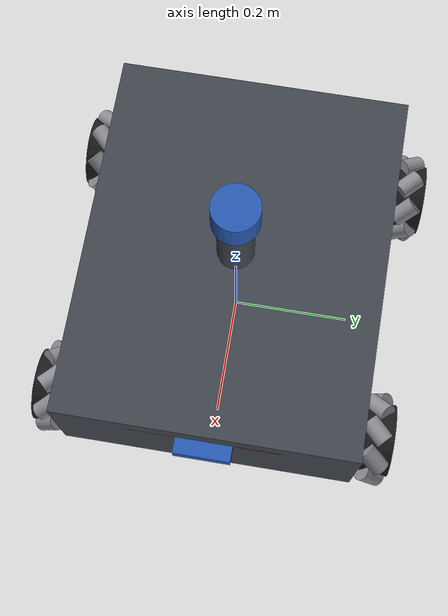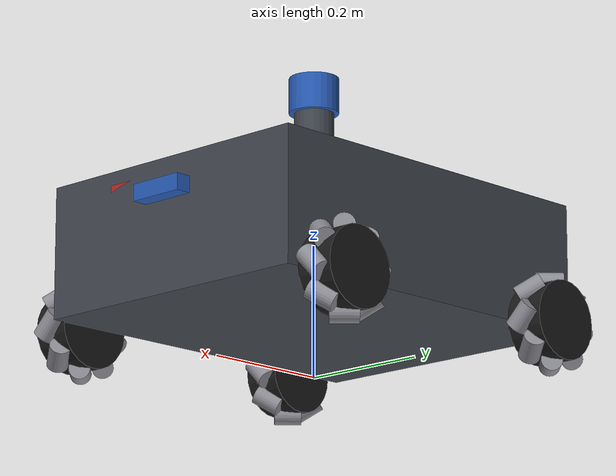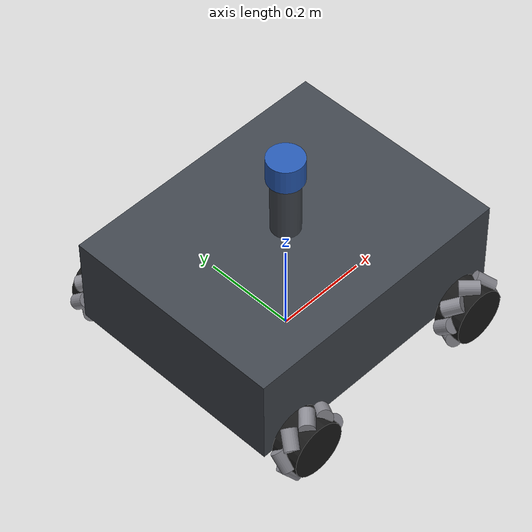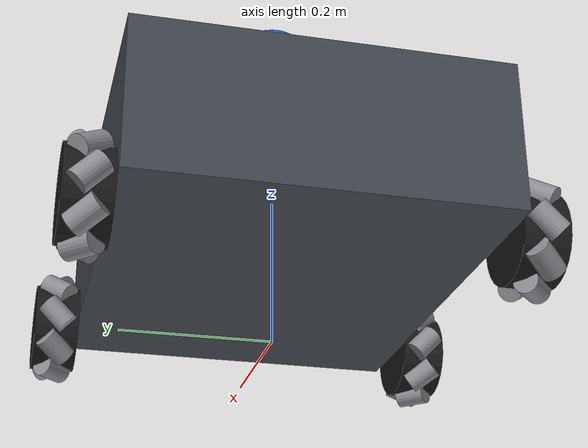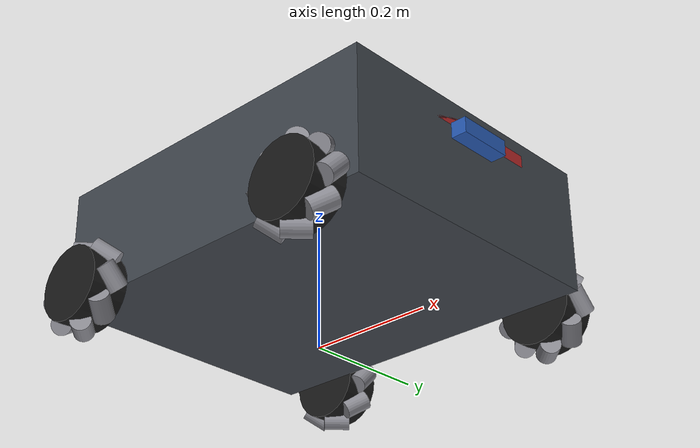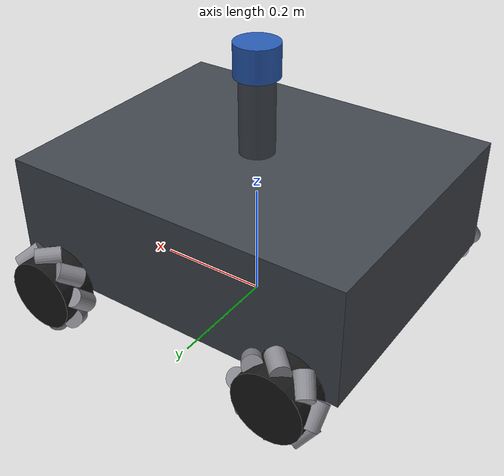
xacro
<?xml version="1.0"?>
<robot xmlns:xacro="http://www.ros.org/wiki/xacro"
       xmlns:gz="http://gazebosim.org/schema"
       name="r2">

  <xacro:arg name="use_sim"          default="true"/>
  <xacro:arg name="use_ros2_control" default="true"/>
  <xacro:arg name="controllers_file" default=""/>
  <xacro:arg name="contact_model"    default="friction"/>
  <xacro:arg name="use_ground_truth" default="true"/>

  <xacro:arg name="publish_roller_states" default="false"/>

  <!-- Roller geometry and bearing losses, see common_properties.xacro. -->
  <xacro:arg name="mecanum_roller_count"    default="8"/>
  <xacro:arg name="mecanum_roller_damping"  default="0.0"/>
  <xacro:arg name="mecanum_roller_friction" default="0.0"/>

  <!-- Mecanum contact friction, see common_properties.xacro. -->
  <xacro:arg name="mecanum_mu_slip" default="0.05"/>
  <xacro:arg name="mecanum_mu_grip" default="1.0"/>

  <!-- Includes. Order matters: properties and macros before their users.    -->
  <xacro:include filename="$(find r2_description)/urdf/common_properties.xacro"/>
  <xacro:include filename="$(find r2_description)/urdf/inertial_macros.xacro"/>
  <xacro:include filename="$(find r2_description)/urdf/base.xacro"/>
  <xacro:include filename="$(find r2_description)/urdf/mecanum_wheel.xacro"/>
  <xacro:include filename="$(find r2_description)/urdf/sensors.xacro"/>
  <xacro:include filename="$(find r2_description)/urdf/r2.ros2_control.xacro"/>
  <xacro:include filename="$(find r2_description)/urdf/r2.gazebo.xacro"/>

  <!-- Wheels                                                               -->
  <xacro:mecanum_wheel prefix="front_left"
                       x_off="${wheel_x_off}"  y_off="${wheel_y_off}"
                       roller_dir="-1" contact_model="$(arg contact_model)"/>

  <xacro:mecanum_wheel prefix="front_right"
                       x_off="${wheel_x_off}"  y_off="${-wheel_y_off}"
                       roller_dir="1"  contact_model="$(arg contact_model)"/>

  <xacro:mecanum_wheel prefix="rear_left"
                       x_off="${-wheel_x_off}" y_off="${wheel_y_off}"
                       roller_dir="1"  contact_model="$(arg contact_model)"/>

  <xacro:mecanum_wheel prefix="rear_right"
                       x_off="${-wheel_x_off}" y_off="${-wheel_y_off}"
                       roller_dir="-1" contact_model="$(arg contact_model)"/>

  <!-- Control and simulation                                               -->
  <xacro:if value="$(arg use_ros2_control)">
    <xacro:r2_ros2_control use_sim="$(arg use_sim)"
                           controllers_file="$(arg controllers_file)"
                           contact_model="$(arg contact_model)"
                           publish_roller_states="$(arg publish_roller_states)"/>
  </xacro:if>

  <xacro:if value="$(arg use_sim)">
    <xacro:r2_gazebo_sensors use_ground_truth="$(arg use_ground_truth)"/>
  </xacro:if>

</robot>

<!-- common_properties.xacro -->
<robot xmlns:xacro="http://www.ros.org/wiki/xacro">

  <!-- Overall envelope (competition constraint)                            -->
  <xacro:property name="footprint_x" value="0.600"/>
  <xacro:property name="footprint_y" value="0.600"/>
  <xacro:property name="height_max"  value="0.500"/>

  <!-- Wheels (152 mm diameter mecanum)                                     -->
  <xacro:property name="wheel_radius" value="0.076"/>
  <xacro:property name="wheel_width"  value="0.060"/>
  <xacro:property name="wheel_mass"   value="1.20"/>

  <!-- Roller rake angle. Real mecanum rollers sit at 45 deg to the wheel axis. -->
  <xacro:property name="roller_angle" value="${radians(45)}"/>

  <!-- Chassis                                                              -->
  <!-- Width is derived so that chassis + both wheels == footprint_y exactly. -->
  <xacro:property name="chassis_x"    value="${footprint_x}"/>
  <xacro:property name="chassis_y"    value="${footprint_y - 2 * wheel_width}"/>
  <xacro:property name="chassis_z"    value="0.200"/>
  <xacro:property name="chassis_mass" value="20.0"/>

  <!-- Mecanum kinematics                                                   -->
  <!-- lx: half the wheelbase (base_link X to wheel centre).                 -->
  <xacro:property name="wheel_x_off" value="0.220"/>
  <!-- ly: half the track. Derived so the wheels sit flush with the envelope. -->
  <xacro:property name="wheel_y_off" value="${(chassis_y + wheel_width) / 2}"/>

  <xacro:property name="lx_plus_ly" value="${wheel_x_off + wheel_y_off}"/>

  <!-- Wheel velocity limit [rad/s]. 30 rad/s * 0.076 m ~= 2.3 m/s at the rim. -->
  <xacro:property name="max_wheel_vel" value="30.0"/>

  <!-- Mecanum contact model                                                -->
  <xacro:property name="mecanum_mu_slip" value="$(arg mecanum_mu_slip)"/>  <!-- across fdir1 -> SDF mu2: rollers free-run -->
  <xacro:property name="mecanum_mu_grip" value="$(arg mecanum_mu_grip)"/>  <!-- along  fdir1 -> SDF mu : rollers grip -->

  <xacro:property name="mecanum_roller_count"  value="$(arg mecanum_roller_count)"/>
  <xacro:property name="mecanum_roller_mass"   value="0.05"/>
  <xacro:property name="mecanum_roller_mu"     value="1.0"/>
  <!-- Roller barrel radius; the hub is inset by this much so the rollers carry the load. -->
  <xacro:property name="mecanum_roller_radius" value="0.016"/>

  <xacro:property name="mecanum_roller_damping"  value="$(arg mecanum_roller_damping)"/>
  <xacro:property name="mecanum_roller_friction" value="$(arg mecanum_roller_friction)"/>

  <!-- Sensor mast (raises the LIDAR clear of the chassis)                  -->
  <xacro:property name="mast_radius" value="0.030"/>
  <xacro:property name="mast_height" value="0.130"/>
  <xacro:property name="mast_mass"   value="0.50"/>

  <!-- Sensors                                                              -->
  <!-- 2D LIDAR, LD19 / RPLIDAR-S2 class -->
  <xacro:property name="lidar_radius"  value="0.038"/>
  <xacro:property name="lidar_height"  value="0.055"/>
  <xacro:property name="lidar_mass"    value="0.19"/>
  <xacro:property name="lidar_samples" value="640"/>
  <xacro:property name="lidar_rate"    value="10.0"/>
  <xacro:property name="lidar_min"     value="0.15"/>
  <xacro:property name="lidar_max"     value="12.0"/>
  <xacro:property name="lidar_noise"   value="0.01"/>

  <!-- RGB-D camera, RealSense D435 class -->
  <xacro:property name="camera_x"      value="0.025"/>
  <xacro:property name="camera_y"      value="0.090"/>
  <xacro:property name="camera_z"      value="0.025"/>
  <xacro:property name="camera_mass"   value="0.072"/>
  <xacro:property name="camera_width"  value="640"/>
  <xacro:property name="camera_height" value="480"/>
  <xacro:property name="camera_hfov"   value="1.274"/>   <!-- ~73 deg -->
  <xacro:property name="camera_rate"   value="15.0"/>
  <xacro:property name="camera_near"   value="0.30"/>
  <xacro:property name="camera_far"    value="8.00"/>
  <!-- Mounted on the front face, at roughly half chassis height. -->
  <xacro:property name="camera_mount_z" value="0.150"/>

  <!-- IMU -->
  <xacro:property name="imu_size"   value="0.020"/>
  <xacro:property name="imu_mass"   value="0.020"/>
  <xacro:property name="imu_rate"   value="100.0"/>
  <xacro:property name="imu_mount_z" value="0.050"/>

  <!-- Derived heights (for sanity checks and sensor placement)             -->
  <xacro:property name="chassis_top_z" value="${chassis_z}"/>
  <xacro:property name="mast_top_z"    value="${chassis_top_z + mast_height}"/>
  <xacro:property name="lidar_mount_z" value="${mast_top_z + lidar_height / 2}"/>

  <!-- Materials (RViz only; Gazebo colours live in r2.gazebo.xacro)        -->
  <material name="r2_chassis_grey"><color rgba="0.25 0.27 0.30 1.0"/></material>
  <material name="r2_wheel_black"> <color rgba="0.10 0.10 0.10 1.0"/></material>
  <material name="r2_roller_grey"> <color rgba="0.55 0.55 0.58 1.0"/></material>
  <material name="r2_sensor_blue"> <color rgba="0.15 0.35 0.70 1.0"/></material>
  <material name="r2_accent_red">  <color rgba="0.70 0.15 0.15 1.0"/></material>

</robot>

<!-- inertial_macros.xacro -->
<robot xmlns:xacro="http://www.ros.org/wiki/xacro">

  <!--
    Solid cuboid of mass m with full side lengths x, y, z, about its centroid.
      Ixx = m(y^2 + z^2)/12, etc.
  -->
  <xacro:macro name="box_inertial" params="mass x y z *origin">
    <inertial>
      <xacro:insert_block name="origin"/>
      <mass value="${mass}"/>
      <inertia
        ixx="${mass * (y*y + z*z) / 12.0}" ixy="0.0" ixz="0.0"
        iyy="${mass * (x*x + z*z) / 12.0}" iyz="0.0"
        izz="${mass * (x*x + y*y) / 12.0}"/>
    </inertial>
  </xacro:macro>

  <!--
    Solid cylinder of mass m, radius r, length h, symmetry axis along LOCAL Z.
      Ixx = Iyy = m(3r^2 + h^2)/12,  Izz = m r^2 / 2
  -->
  <xacro:macro name="cylinder_inertial_z" params="mass radius length *origin">
    <inertial>
      <xacro:insert_block name="origin"/>
      <mass value="${mass}"/>
      <inertia
        ixx="${mass * (3.0*radius*radius + length*length) / 12.0}" ixy="0.0" ixz="0.0"
        iyy="${mass * (3.0*radius*radius + length*length) / 12.0}" iyz="0.0"
        izz="${mass * radius * radius / 2.0}"/>
    </inertial>
  </xacro:macro>

  <xacro:macro name="cylinder_inertial_y" params="mass radius length *origin">
    <inertial>
      <xacro:insert_block name="origin"/>
      <mass value="${mass}"/>
      <inertia
        ixx="${mass * (3.0*radius*radius + length*length) / 12.0}" ixy="0.0" ixz="0.0"
        iyy="${mass * radius * radius / 2.0}"                      iyz="0.0"
        izz="${mass * (3.0*radius*radius + length*length) / 12.0}"/>
    </inertial>
  </xacro:macro>

  <!--
    Solid sphere of mass m, radius r.  I = 2/5 m r^2 on every axis.
  -->
  <xacro:macro name="sphere_inertial" params="mass radius *origin">
    <inertial>
      <xacro:insert_block name="origin"/>
      <mass value="${mass}"/>
      <inertia
        ixx="${2.0 * mass * radius * radius / 5.0}" ixy="0.0" ixz="0.0"
        iyy="${2.0 * mass * radius * radius / 5.0}" iyz="0.0"
        izz="${2.0 * mass * radius * radius / 5.0}"/>
    </inertial>
  </xacro:macro>

</robot>

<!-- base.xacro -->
<robot xmlns:xacro="http://www.ros.org/wiki/xacro">

  <link name="base_footprint"/>

  <joint name="base_footprint_joint" type="fixed">
    <parent link="base_footprint"/>
    <child  link="base_link"/>
    <!-- base_link sits at the wheel axle, i.e. one wheel radius off the floor. -->
    <origin xyz="0 0 ${wheel_radius}" rpy="0 0 0"/>
  </joint>

  <!--
    base_link is the kinematic root of the rigid body. It holds no geometry so
    that the chassis can be repositioned without moving the frame every sensor
    and wheel is measured against.
  -->
  <link name="base_link"/>

  <joint name="chassis_joint" type="fixed">
    <parent link="base_link"/>
    <child  link="chassis_link"/>
    <!-- Chassis sits on top of base_link, so its centroid is half its height up. -->
    <origin xyz="0 0 ${chassis_z / 2}" rpy="0 0 0"/>
  </joint>

  <link name="chassis_link">
    <visual>
      <origin xyz="0 0 0" rpy="0 0 0"/>
      <geometry>
        <box size="${chassis_x} ${chassis_y} ${chassis_z}"/>
      </geometry>
      <material name="r2_chassis_grey"/>
    </visual>

    <collision>
      <origin xyz="0 0 0" rpy="0 0 0"/>
      <geometry>
        <box size="${chassis_x} ${chassis_y} ${chassis_z}"/>
      </geometry>
    </collision>

    <xacro:box_inertial mass="${chassis_mass}"
                        x="${chassis_x}" y="${chassis_y}" z="${chassis_z}">
      <origin xyz="0 0 0" rpy="0 0 0"/>
    </xacro:box_inertial>
  </link>

  <!-- Front marker, so "forward" is unambiguous in RViz and the Gazebo GUI. -->
  <joint name="front_marker_joint" type="fixed">
    <parent link="chassis_link"/>
    <child  link="front_marker_link"/>
    <origin xyz="${chassis_x / 2 - 0.005} 0 ${chassis_z / 2 - 0.030}" rpy="0 0 0"/>
  </joint>

  <link name="front_marker_link">
    <visual>
      <origin xyz="0 0 0" rpy="0 0 0"/>
      <geometry>
        <box size="0.010 ${chassis_y * 0.5} 0.020"/>
      </geometry>
      <material name="r2_accent_red"/>
    </visual>
  </link>

  <joint name="mast_joint" type="fixed">
    <parent link="base_link"/>
    <child  link="mast_link"/>
    <origin xyz="0 0 ${chassis_top_z + mast_height / 2}" rpy="0 0 0"/>
  </joint>

  <link name="mast_link">
    <visual>
      <origin xyz="0 0 0" rpy="0 0 0"/>
      <geometry>
        <cylinder radius="${mast_radius}" length="${mast_height}"/>
      </geometry>
      <material name="r2_chassis_grey"/>
    </visual>

    <collision>
      <origin xyz="0 0 0" rpy="0 0 0"/>
      <geometry>
        <cylinder radius="${mast_radius}" length="${mast_height}"/>
      </geometry>
    </collision>

    <xacro:cylinder_inertial_z mass="${mast_mass}"
                               radius="${mast_radius}" length="${mast_height}">
      <origin xyz="0 0 0" rpy="0 0 0"/>
    </xacro:cylinder_inertial_z>
  </link>

</robot>

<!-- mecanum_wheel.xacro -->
<robot xmlns:xacro="http://www.ros.org/wiki/xacro"
       xmlns:gz="http://gazebosim.org/schema">

  <!-- A single free-spinning roller (used only by contact_model="rollers")  -->
  <xacro:macro name="mecanum_roller" params="prefix index roller_dir">

    <!-- Angular position of this roller around the wheel axle. -->
    <xacro:property name="phi"
                    value="${2.0 * pi * index / mecanum_roller_count}"/>
    <!-- Radius at which the roller centres sit, so the barrels reach wheel_radius. -->
    <xacro:property name="r_hub" value="${wheel_radius - mecanum_roller_radius}"/>
    <!-- Roller barrel length: spans most of the wheel width at its rake angle. -->
    <xacro:property name="r_len" value="${wheel_width * 0.7}"/>

    <xacro:property name="r_axis_y" value="${cos(roller_angle)}"/>
    <xacro:property name="r_axis_z" value="${roller_dir * sin(roller_angle)}"/>
    <!-- Roll that carries the cylinder's default +Z onto that spin axis. -->
    <xacro:property name="r_roll" value="${atan2(-r_axis_y, r_axis_z)}"/>

    <joint name="${prefix}_roller_${index}_joint" type="continuous">
      <parent link="${prefix}_wheel_link"/>
      <child  link="${prefix}_roller_${index}_link"/>
      <origin xyz="${r_hub * cos(phi)} 0 ${-r_hub * sin(phi)}"
              rpy="0 ${phi} 0"/>
      <axis xyz="0 ${r_axis_y} ${r_axis_z}"/>
      <dynamics damping="${mecanum_roller_damping}"
                friction="${mecanum_roller_friction}"/>
    </joint>

    <link name="${prefix}_roller_${index}_link">
      <visual>
        <origin xyz="0 0 0" rpy="${r_roll} 0 0"/>
        <geometry>
          <cylinder radius="${mecanum_roller_radius}" length="${r_len}"/>
        </geometry>
        <material name="r2_roller_grey"/>
      </visual>

      <collision>
        <origin xyz="0 0 0" rpy="${r_roll} 0 0"/>
        <geometry>
          <cylinder radius="${mecanum_roller_radius}" length="${r_len}"/>
        </geometry>
      </collision>

      <!-- Spin axis is local Z before the r_roll rotation is applied. -->
      <xacro:cylinder_inertial_z mass="${mecanum_roller_mass}"
                                 radius="${mecanum_roller_radius}" length="${r_len}">
        <origin xyz="0 0 0" rpy="${r_roll} 0 0"/>
      </xacro:cylinder_inertial_z>
    </link>

    <gazebo reference="${prefix}_roller_${index}_link">
      <mu1>${mecanum_roller_mu}</mu1>
      <mu2>${mecanum_roller_mu}</mu2>
      <kp>1e6</kp>
      <kd>100.0</kd>
    </gazebo>

  </xacro:macro>

  <!-- Decorative roller, no joint. Used by contact_model="friction" so the  -->
  <!-- wheel still reads as a mecanum wheel visually.                        -->
  <xacro:macro name="mecanum_roller_visual" params="index roller_dir">
    <xacro:property name="phi"
                    value="${2.0 * pi * index / mecanum_roller_count}"/>
    <xacro:property name="r_hub" value="${wheel_radius - mecanum_roller_radius}"/>
    <xacro:property name="r_len" value="${wheel_width * 0.7}"/>
    <xacro:property name="r_axis_y" value="${cos(roller_angle)}"/>
    <xacro:property name="r_axis_z" value="${roller_dir * sin(roller_angle)}"/>
    <xacro:property name="r_roll" value="${atan2(-r_axis_y, r_axis_z)}"/>

    <visual>
      <!--
        Compose the phi rotation about Y with the roller's own roll. Expressed
        directly here because a visual has no frame of its own to hang it on.
      -->
      <origin xyz="${r_hub * cos(phi)} 0 ${-r_hub * sin(phi)}"
              rpy="${r_roll} ${phi} 0"/>
      <geometry>
        <cylinder radius="${mecanum_roller_radius}" length="${r_len}"/>
      </geometry>
      <material name="r2_roller_grey"/>
    </visual>
  </xacro:macro>

  <!-- The wheel                                                            -->
  <!--
    prefix      : front_left | front_right | rear_left | rear_right
    x_off/y_off : wheel centre relative to base_link
    roller_dir  : +1 or -1, the rake direction (see diagram above)
  -->
  <xacro:macro name="mecanum_wheel" params="prefix x_off y_off roller_dir contact_model">

    <joint name="${prefix}_wheel_joint" type="continuous">
      <parent link="base_link"/>
      <child  link="${prefix}_wheel_link"/>
      <origin xyz="${x_off} ${y_off} 0" rpy="0 0 0"/>
      <!-- All four wheels spin about base_link Y. REP-103: +Y is left. -->
      <axis xyz="0 1 0"/>
      <limit effort="40.0" velocity="${max_wheel_vel}"/>
      <dynamics damping="0.01" friction="0.0"/>
    </joint>

    <link name="${prefix}_wheel_link">

      <xacro:if value="${contact_model == 'rollers'}">
        <!--
          Hub is inset by one roller diameter so it never reaches the ground:
          the rollers must carry the load, or the wheel behaves like a caster.
        -->
        <visual>
          <origin xyz="0 0 0" rpy="${pi/2} 0 0"/>
          <geometry>
            <cylinder radius="${wheel_radius - 2*mecanum_roller_radius}"
                      length="${wheel_width}"/>
          </geometry>
          <material name="r2_wheel_black"/>
        </visual>
        <collision>
          <origin xyz="0 0 0" rpy="${pi/2} 0 0"/>
          <geometry>
            <cylinder radius="${wheel_radius - 2*mecanum_roller_radius}"
                      length="${wheel_width}"/>
          </geometry>
        </collision>
      </xacro:if>

      <xacro:if value="${contact_model == 'friction'}">
        <!-- Full-radius cylinder: this is the surface that touches the ground. -->
        <visual>
          <origin xyz="0 0 0" rpy="${pi/2} 0 0"/>
          <geometry>
            <cylinder radius="${wheel_radius - mecanum_roller_radius}"
                      length="${wheel_width}"/>
          </geometry>
          <material name="r2_wheel_black"/>
        </visual>
        <!-- Visual-only rollers, so the wheel still reads as mecanum. -->
        <xacro:loop_rollers_visual index="0" roller_dir="${roller_dir}"/>
        <collision>
          <origin xyz="0 0 0" rpy="0 0 0"/>
          <geometry>
            <sphere radius="${wheel_radius}"/>
          </geometry>
        </collision>
      </xacro:if>

      <!-- Spins about Y, so the polar moment must land on Iyy. -->
      <xacro:cylinder_inertial_y mass="${wheel_mass}"
                                 radius="${wheel_radius}" length="${wheel_width}">
        <origin xyz="0 0 0" rpy="0 0 0"/>
      </xacro:cylinder_inertial_y>
    </link>

    <xacro:if value="${contact_model == 'rollers'}">
      <!-- Hub must not grip: all traction comes from the rollers. -->
      <gazebo reference="${prefix}_wheel_link">
        <mu1>0.0</mu1>
        <mu2>0.0</mu2>
      </gazebo>
      <xacro:loop_rollers index="0" prefix="${prefix}" roller_dir="${roller_dir}"/>
    </xacro:if>

    <xacro:if value="${contact_model == 'friction'}">
      <gazebo reference="${prefix}_wheel_link">
        <collision>
          <surface>
            <friction>
              <ode>
                <mu>${mecanum_mu_grip}</mu>
                <mu2>${mecanum_mu_slip}</mu2>
                <xacro:unless value="${mecanum_mu_slip == mecanum_mu_grip}">
                  <fdir1 gz:expressed_in="base_footprint">${cos(roller_angle)} ${roller_dir * sin(roller_angle)} 0</fdir1>
                </xacro:unless>
              </ode>
            </friction>
          </surface>
        </collision>
      </gazebo>
    </xacro:if>

  </xacro:macro>

  <!-- Recursive loops (xacro has no for-loop)                              -->
  <xacro:macro name="loop_rollers" params="index prefix roller_dir">
    <xacro:if value="${index &lt; mecanum_roller_count}">
      <xacro:mecanum_roller prefix="${prefix}" index="${index}" roller_dir="${roller_dir}"/>
      <xacro:loop_rollers index="${index + 1}" prefix="${prefix}" roller_dir="${roller_dir}"/>
    </xacro:if>
  </xacro:macro>

  <xacro:macro name="loop_rollers_visual" params="index roller_dir">
    <xacro:if value="${index &lt; mecanum_roller_count}">
      <xacro:mecanum_roller_visual index="${index}" roller_dir="${roller_dir}"/>
      <xacro:loop_rollers_visual index="${index + 1}" roller_dir="${roller_dir}"/>
    </xacro:if>
  </xacro:macro>

</robot>

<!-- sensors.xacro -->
<robot xmlns:xacro="http://www.ros.org/wiki/xacro">

  <!-- IMU                                                                  -->
  <joint name="imu_joint" type="fixed">
    <parent link="base_link"/>
    <child  link="imu_link"/>
    <origin xyz="0 0 ${imu_mount_z}" rpy="0 0 0"/>
  </joint>

  <link name="imu_link">
    <visual>
      <origin xyz="0 0 0" rpy="0 0 0"/>
      <geometry>
        <box size="${imu_size} ${imu_size} ${imu_size}"/>
      </geometry>
      <material name="r2_accent_red"/>
    </visual>

    <xacro:box_inertial mass="${imu_mass}"
                        x="${imu_size}" y="${imu_size}" z="${imu_size}">
      <origin xyz="0 0 0" rpy="0 0 0"/>
    </xacro:box_inertial>
  </link>

  <!-- 2D LIDAR                                                             -->
  <joint name="lidar_joint" type="fixed">
    <parent link="base_link"/>
    <child  link="lidar_link"/>
    <origin xyz="0 0 ${lidar_mount_z}" rpy="0 0 0"/>
  </joint>

  <link name="lidar_link">
    <visual>
      <origin xyz="0 0 0" rpy="0 0 0"/>
      <geometry>
        <cylinder radius="${lidar_radius}" length="${lidar_height}"/>
      </geometry>
      <material name="r2_sensor_blue"/>
    </visual>

    <collision>
      <origin xyz="0 0 0" rpy="0 0 0"/>
      <geometry>
        <cylinder radius="${lidar_radius}" length="${lidar_height}"/>
      </geometry>
    </collision>

    <xacro:cylinder_inertial_z mass="${lidar_mass}"
                               radius="${lidar_radius}" length="${lidar_height}">
      <origin xyz="0 0 0" rpy="0 0 0"/>
    </xacro:cylinder_inertial_z>
  </link>

  <!-- RGB-D camera                                                         -->
  <joint name="camera_joint" type="fixed">
    <parent link="chassis_link"/>
    <child  link="camera_link"/>
    <!-- Flush with the front face, looking straight ahead. -->
    <origin xyz="${chassis_x / 2 + camera_x / 2} 0 ${camera_mount_z - chassis_z / 2}"
            rpy="0 0 0"/>
  </joint>

  <link name="camera_link">
    <visual>
      <origin xyz="0 0 0" rpy="0 0 0"/>
      <geometry>
        <box size="${camera_x} ${camera_y} ${camera_z}"/>
      </geometry>
      <material name="r2_sensor_blue"/>
    </visual>

    <collision>
      <origin xyz="0 0 0" rpy="0 0 0"/>
      <geometry>
        <box size="${camera_x} ${camera_y} ${camera_z}"/>
      </geometry>
    </collision>

    <xacro:box_inertial mass="${camera_mass}"
                        x="${camera_x}" y="${camera_y}" z="${camera_z}">
      <origin xyz="0 0 0" rpy="0 0 0"/>
    </xacro:box_inertial>
  </link>

  <joint name="camera_optical_joint" type="fixed">
    <parent link="camera_link"/>
    <child  link="camera_optical_link"/>
    <origin xyz="0 0 0" rpy="${-pi/2} 0 ${-pi/2}"/>
  </joint>

  <link name="camera_optical_link"/>

</robot>
